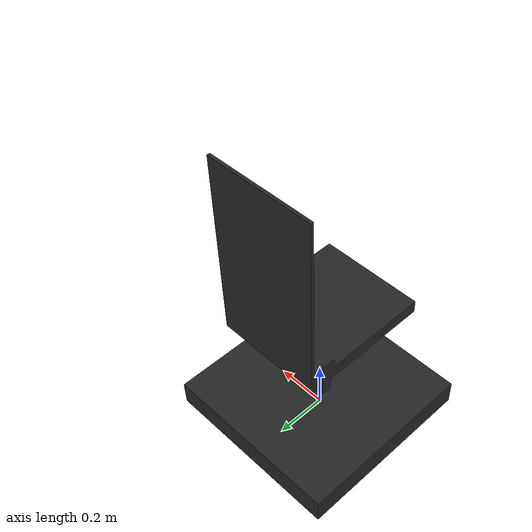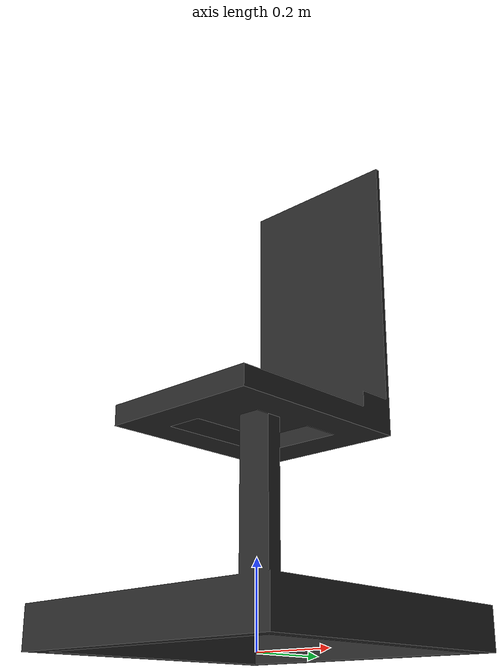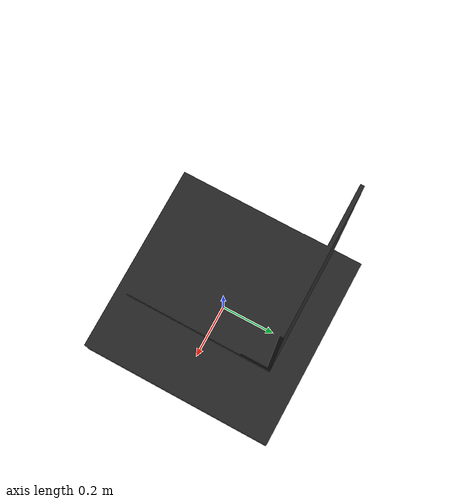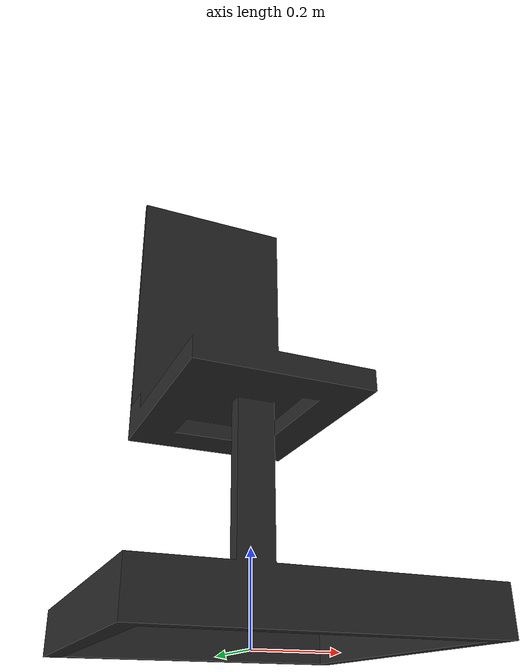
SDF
<?xml version='1.0'?>
<sdf version='1.6'>
  <model name='obstacle_chair'>
    <static>1</static>
    <pose frame=''>0 0 0 0 -0 0</pose>
    <link name='Wall'>
      <collision name='Chair_Collision'>
        <geometry>
          <mesh>
            <uri>model://obstacle_chair/chair.dae</uri>
          </mesh>
        </geometry>
        <pose frame=''>0 0 0 0 -0 0</pose>
      </collision>
      <visual name='Chair_Visual'>
        <pose frame=''>0 0 0 0 -0 0</pose>
        <geometry>
          <mesh>
            <uri>model://obstacle_chair/chair.dae</uri>
          </mesh>
        </geometry>
        <material>
          <ambient>0.05 0.05 0.05 1</ambient>
          <diffuse>0.15 0.15 0.15 1</diffuse>
          <specular>0 0 0 0</specular>
          <emissive>0 0 0 0</emissive>
        </material>
      </visual>
      <pose frame=''>-0.35 -0.35 0 0 -0 0</pose>
    </link>
  </model>
</sdf>
